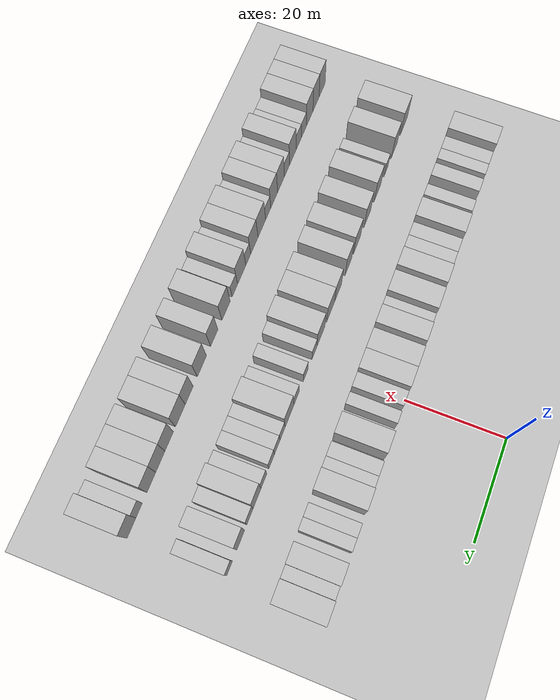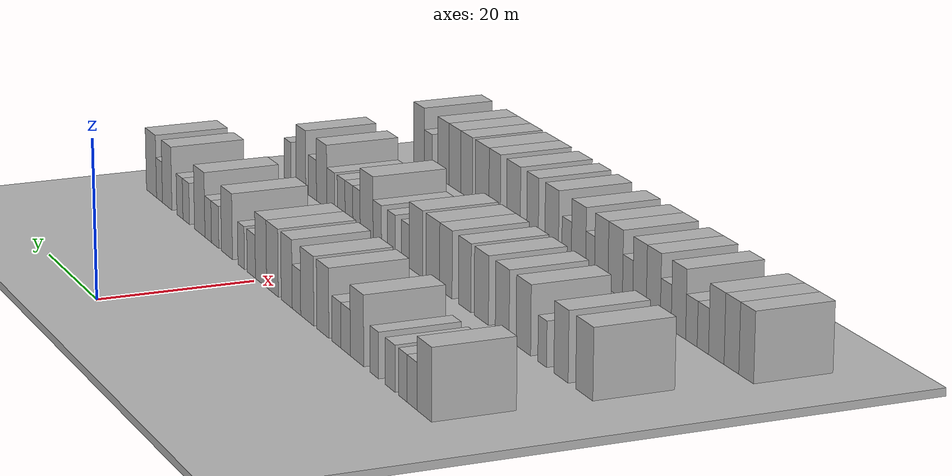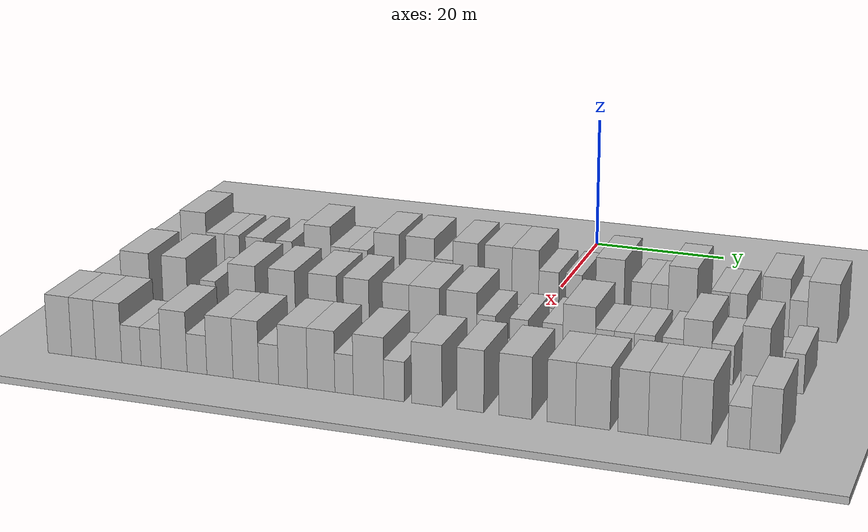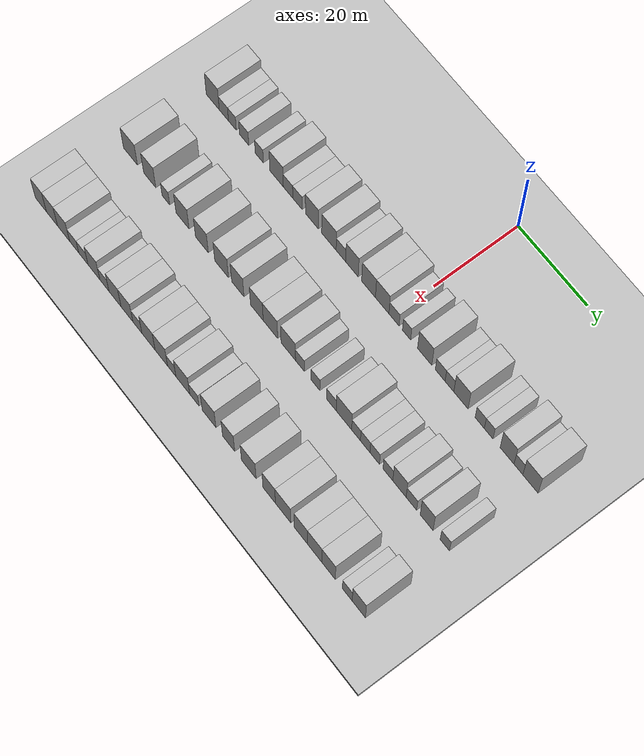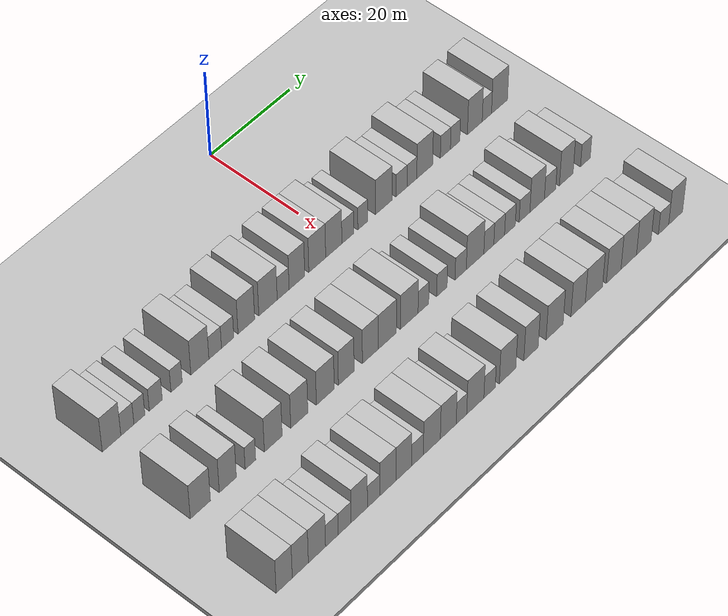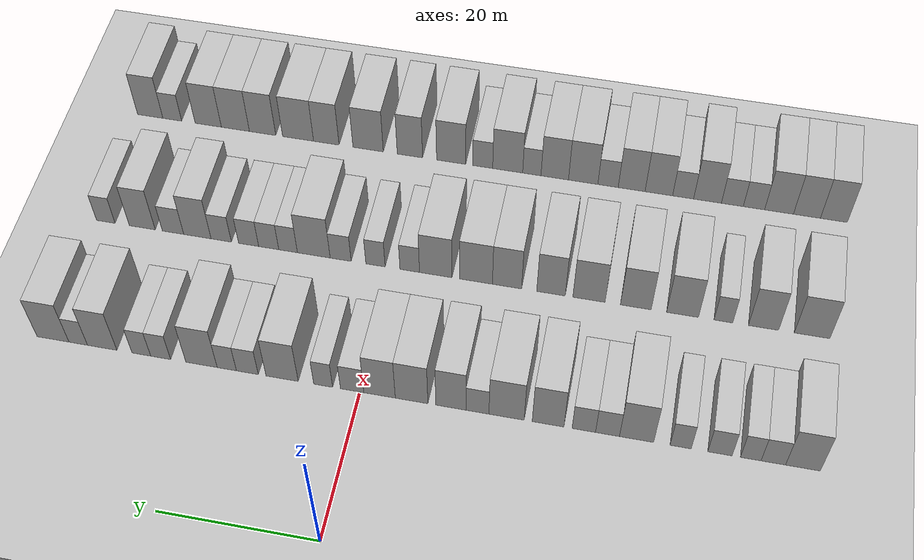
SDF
<sdf version="1.6">
 <world name="default">
  <include><name>ground_plane_1</name><uri>model://HANNAS_ground_plane</uri></include>
  <include>
   <name>ground_plane_2</name>
   <uri>model://HANNAS_ground_plane</uri>
   <pose>100 0 0  0 0 0</pose>
  </include>
  <model name="building_51">
   <static>1</static>
   <pose>25.0000 -54.7039 0 0.000000 0.000000 0.000000</pose>
   <link name="link">
    <pose>0 0 4.50 0 0 0</pose>
    <collision name="collision"><geometry><box><size>10.0000 4.1450 9.0000</size></box></geometry></collision>
    <visual name="visual">
     <cast_shadows>0</cast_shadows>
     <geometry><box><size>10.0000 4.1450 9.0000</size></box></geometry>
     <material>
      <script>
       <uri>model://HANNAS_wall/materials/scripts</uri>
       <uri>model://HANNAS_wall/materials/textures</uri>
       <name>vrc/HANNAS_wall</name>
      </script>
     </material>
    </visual>
   </link>
  </model>
  <model name="building_52">
   <static>1</static>
   <pose>25.0000 -51.1662 0 0.000000 0.000000 0.000000</pose>
   <link name="link">
    <pose>0 0 3.00 0 0 0</pose>
    <collision name="collision"><geometry><box><size>10.0000 2.9303 6.0000</size></box></geometry></collision>
    <visual name="visual">
     <cast_shadows>0</cast_shadows>
     <geometry><box><size>10.0000 2.9303 6.0000</size></box></geometry>
     <material>
      <script>
       <uri>model://HANNAS_wall/materials/scripts</uri>
       <uri>model://HANNAS_wall/materials/textures</uri>
       <name>vrc/HANNAS_wall</name>
      </script>
     </material>
    </visual>
   </link>
  </model>
  <model name="building_53">
   <static>1</static>
   <pose>25.0000 -48.4626 0 0.000000 0.000000 0.000000</pose>
   <link name="link">
    <pose>0 0 3.00 0 0 0</pose>
    <collision name="collision"><geometry><box><size>10.0000 2.4770 6.0000</size></box></geometry></collision>
    <visual name="visual">
     <cast_shadows>0</cast_shadows>
     <geometry><box><size>10.0000 2.4770 6.0000</size></box></geometry>
     <material>
      <script>
       <uri>model://HANNAS_wall/materials/scripts</uri>
       <uri>model://HANNAS_wall/materials/textures</uri>
       <name>vrc/HANNAS_wall</name>
      </script>
     </material>
    </visual>
   </link>
  </model>
  <model name="building_54">
   <static>1</static>
   <pose>25.0000 -44.7541 0 0.000000 0.000000 0.000000</pose>
   <link name="link">
    <pose>0 0 3.00 0 0 0</pose>
    <collision name="collision"><geometry><box><size>10.0000 2.9400 6.0000</size></box></geometry></collision>
    <visual name="visual">
     <cast_shadows>0</cast_shadows>
     <geometry><box><size>10.0000 2.9400 6.0000</size></box></geometry>
     <material>
      <script>
       <uri>model://HANNAS_wall/materials/scripts</uri>
       <uri>model://HANNAS_wall/materials/textures</uri>
       <name>vrc/HANNAS_wall</name>
      </script>
     </material>
    </visual>
   </link>
  </model>
  <model name="building_55">
   <static>1</static>
   <pose>25.0000 -39.9976 0 0.000000 0.000000 0.000000</pose>
   <link name="link">
    <pose>0 0 3.00 0 0 0</pose>
    <collision name="collision"><geometry><box><size>10.0000 2.5729 6.0000</size></box></geometry></collision>
    <visual name="visual">
     <cast_shadows>0</cast_shadows>
     <geometry><box><size>10.0000 2.5729 6.0000</size></box></geometry>
     <material>
      <script>
       <uri>model://HANNAS_wall/materials/scripts</uri>
       <uri>model://HANNAS_wall/materials/textures</uri>
       <name>vrc/HANNAS_wall</name>
      </script>
     </material>
    </visual>
   </link>
  </model>
  <model name="building_56">
   <static>1</static>
   <pose>25.0000 -34.6225 0 0.000000 0.000000 0.000000</pose>
   <link name="link">
    <pose>0 0 4.50 0 0 0</pose>
    <collision name="collision"><geometry><box><size>10.0000 4.1774 9.0000</size></box></geometry></collision>
    <visual name="visual">
     <cast_shadows>0</cast_shadows>
     <geometry><box><size>10.0000 4.1774 9.0000</size></box></geometry>
     <material>
      <script>
       <uri>model://HANNAS_wall/materials/scripts</uri>
       <uri>model://HANNAS_wall/materials/textures</uri>
       <name>vrc/HANNAS_wall</name>
      </script>
     </material>
    </visual>
   </link>
  </model>
  <model name="building_57">
   <static>1</static>
   <pose>25.0000 -31.0649 0 0.000000 0.000000 0.000000</pose>
   <link name="link">
    <pose>0 0 3.00 0 0 0</pose>
    <collision name="collision"><geometry><box><size>10.0000 2.9377 6.0000</size></box></geometry></collision>
    <visual name="visual">
     <cast_shadows>0</cast_shadows>
     <geometry><box><size>10.0000 2.9377 6.0000</size></box></geometry>
     <material>
      <script>
       <uri>model://HANNAS_wall/materials/scripts</uri>
       <uri>model://HANNAS_wall/materials/textures</uri>
       <name>vrc/HANNAS_wall</name>
      </script>
     </material>
    </visual>
   </link>
  </model>
  <model name="building_58">
   <static>1</static>
   <pose>25.0000 -28.1471 0 0.000000 0.000000 0.000000</pose>
   <link name="link">
    <pose>0 0 3.00 0 0 0</pose>
    <collision name="collision"><geometry><box><size>10.0000 2.8979 6.0000</size></box></geometry></collision>
    <visual name="visual">
     <cast_shadows>0</cast_shadows>
     <geometry><box><size>10.0000 2.8979 6.0000</size></box></geometry>
     <material>
      <script>
       <uri>model://HANNAS_wall/materials/scripts</uri>
       <uri>model://HANNAS_wall/materials/textures</uri>
       <name>vrc/HANNAS_wall</name>
      </script>
     </material>
    </visual>
   </link>
  </model>
  <model name="building_59">
   <static>1</static>
   <pose>25.0000 -23.7304 0 0.000000 0.000000 0.000000</pose>
   <link name="link">
    <pose>0 0 4.50 0 0 0</pose>
    <collision name="collision"><geometry><box><size>10.0000 3.9353 9.0000</size></box></geometry></collision>
    <visual name="visual">
     <cast_shadows>0</cast_shadows>
     <geometry><box><size>10.0000 3.9353 9.0000</size></box></geometry>
     <material>
      <script>
       <uri>model://HANNAS_wall/materials/scripts</uri>
       <uri>model://HANNAS_wall/materials/textures</uri>
       <name>vrc/HANNAS_wall</name>
      </script>
     </material>
    </visual>
   </link>
  </model>
  <model name="building_60">
   <static>1</static>
   <pose>25.0000 -18.5632 0 0.000000 0.000000 0.000000</pose>
   <link name="link">
    <pose>0 0 4.50 0 0 0</pose>
    <collision name="collision"><geometry><box><size>10.0000 4.3992 9.0000</size></box></geometry></collision>
    <visual name="visual">
     <cast_shadows>0</cast_shadows>
     <geometry><box><size>10.0000 4.3992 9.0000</size></box></geometry>
     <material>
      <script>
       <uri>model://HANNAS_wall/materials/scripts</uri>
       <uri>model://HANNAS_wall/materials/textures</uri>
       <name>vrc/HANNAS_wall</name>
      </script>
     </material>
    </visual>
   </link>
  </model>
  <model name="building_61">
   <static>1</static>
   <pose>25.0000 -14.9277 0 0.000000 0.000000 0.000000</pose>
   <link name="link">
    <pose>0 0 3.00 0 0 0</pose>
    <collision name="collision"><geometry><box><size>10.0000 2.8717 6.0000</size></box></geometry></collision>
    <visual name="visual">
     <cast_shadows>0</cast_shadows>
     <geometry><box><size>10.0000 2.8717 6.0000</size></box></geometry>
     <material>
      <script>
       <uri>model://HANNAS_wall/materials/scripts</uri>
       <uri>model://HANNAS_wall/materials/textures</uri>
       <name>vrc/HANNAS_wall</name>
      </script>
     </material>
    </visual>
   </link>
  </model>
  <model name="building_62">
   <static>1</static>
   <pose>25.0000 -11.5971 0 0.000000 0.000000 0.000000</pose>
   <link name="link">
    <pose>0 0 4.50 0 0 0</pose>
    <collision name="collision"><geometry><box><size>10.0000 3.7895 9.0000</size></box></geometry></collision>
    <visual name="visual">
     <cast_shadows>0</cast_shadows>
     <geometry><box><size>10.0000 3.7895 9.0000</size></box></geometry>
     <material>
      <script>
       <uri>model://HANNAS_wall/materials/scripts</uri>
       <uri>model://HANNAS_wall/materials/textures</uri>
       <name>vrc/HANNAS_wall</name>
      </script>
     </material>
    </visual>
   </link>
  </model>
  <model name="building_63">
   <static>1</static>
   <pose>25.0000 -6.6392 0 0.000000 0.000000 0.000000</pose>
   <link name="link">
    <pose>0 0 4.50 0 0 0</pose>
    <collision name="collision"><geometry><box><size>10.0000 4.1262 9.0000</size></box></geometry></collision>
    <visual name="visual">
     <cast_shadows>0</cast_shadows>
     <geometry><box><size>10.0000 4.1262 9.0000</size></box></geometry>
     <material>
      <script>
       <uri>model://HANNAS_wall/materials/scripts</uri>
       <uri>model://HANNAS_wall/materials/textures</uri>
       <name>vrc/HANNAS_wall</name>
      </script>
     </material>
    </visual>
   </link>
  </model>
  <model name="building_64">
   <static>1</static>
   <pose>25.0000 -2.5729 0 0.000000 0.000000 0.000000</pose>
   <link name="link">
    <pose>0 0 4.50 0 0 0</pose>
    <collision name="collision"><geometry><box><size>10.0000 4.0065 9.0000</size></box></geometry></collision>
    <visual name="visual">
     <cast_shadows>0</cast_shadows>
     <geometry><box><size>10.0000 4.0065 9.0000</size></box></geometry>
     <material>
      <script>
       <uri>model://HANNAS_wall/materials/scripts</uri>
       <uri>model://HANNAS_wall/materials/textures</uri>
       <name>vrc/HANNAS_wall</name>
      </script>
     </material>
    </visual>
   </link>
  </model>
  <model name="building_65">
   <static>1</static>
   <pose>25.0000 0.9245 0 0.000000 0.000000 0.000000</pose>
   <link name="link">
    <pose>0 0 3.00 0 0 0</pose>
    <collision name="collision"><geometry><box><size>10.0000 2.9884 6.0000</size></box></geometry></collision>
    <visual name="visual">
     <cast_shadows>0</cast_shadows>
     <geometry><box><size>10.0000 2.9884 6.0000</size></box></geometry>
     <material>
      <script>
       <uri>model://HANNAS_wall/materials/scripts</uri>
       <uri>model://HANNAS_wall/materials/textures</uri>
       <name>vrc/HANNAS_wall</name>
      </script>
     </material>
    </visual>
   </link>
  </model>
  <model name="building_66">
   <static>1</static>
   <pose>25.0000 4.6315 0 0.000000 0.000000 0.000000</pose>
   <link name="link">
    <pose>0 0 3.00 0 0 0</pose>
    <collision name="collision"><geometry><box><size>10.0000 2.4256 6.0000</size></box></geometry></collision>
    <visual name="visual">
     <cast_shadows>0</cast_shadows>
     <geometry><box><size>10.0000 2.4256 6.0000</size></box></geometry>
     <material>
      <script>
       <uri>model://HANNAS_wall/materials/scripts</uri>
       <uri>model://HANNAS_wall/materials/textures</uri>
       <name>vrc/HANNAS_wall</name>
      </script>
     </material>
    </visual>
   </link>
  </model>
  <model name="building_67">
   <static>1</static>
   <pose>25.0000 9.9243 0 0.000000 0.000000 0.000000</pose>
   <link name="link">
    <pose>0 0 4.50 0 0 0</pose>
    <collision name="collision"><geometry><box><size>10.0000 4.1599 9.0000</size></box></geometry></collision>
    <visual name="visual">
     <cast_shadows>0</cast_shadows>
     <geometry><box><size>10.0000 4.1599 9.0000</size></box></geometry>
     <material>
      <script>
       <uri>model://HANNAS_wall/materials/scripts</uri>
       <uri>model://HANNAS_wall/materials/textures</uri>
       <name>vrc/HANNAS_wall</name>
      </script>
     </material>
    </visual>
   </link>
  </model>
  <model name="building_68">
   <static>1</static>
   <pose>25.0000 14.4250 0 0.000000 0.000000 0.000000</pose>
   <link name="link">
    <pose>0 0 3.00 0 0 0</pose>
    <collision name="collision"><geometry><box><size>10.0000 2.8414 6.0000</size></box></geometry></collision>
    <visual name="visual">
     <cast_shadows>0</cast_shadows>
     <geometry><box><size>10.0000 2.8414 6.0000</size></box></geometry>
     <material>
      <script>
       <uri>model://HANNAS_wall/materials/scripts</uri>
       <uri>model://HANNAS_wall/materials/textures</uri>
       <name>vrc/HANNAS_wall</name>
      </script>
     </material>
    </visual>
   </link>
  </model>
  <model name="building_69">
   <static>1</static>
   <pose>25.0000 17.1010 0 0.000000 0.000000 0.000000</pose>
   <link name="link">
    <pose>0 0 3.00 0 0 0</pose>
    <collision name="collision"><geometry><box><size>10.0000 2.5105 6.0000</size></box></geometry></collision>
    <visual name="visual">
     <cast_shadows>0</cast_shadows>
     <geometry><box><size>10.0000 2.5105 6.0000</size></box></geometry>
     <material>
      <script>
       <uri>model://HANNAS_wall/materials/scripts</uri>
       <uri>model://HANNAS_wall/materials/textures</uri>
       <name>vrc/HANNAS_wall</name>
      </script>
     </material>
    </visual>
   </link>
  </model>
  <model name="building_70">
   <static>1</static>
   <pose>25.0000 20.4096 0 0.000000 0.000000 0.000000</pose>
   <link name="link">
    <pose>0 0 4.50 0 0 0</pose>
    <collision name="collision"><geometry><box><size>10.0000 4.1067 9.0000</size></box></geometry></collision>
    <visual name="visual">
     <cast_shadows>0</cast_shadows>
     <geometry><box><size>10.0000 4.1067 9.0000</size></box></geometry>
     <material>
      <script>
       <uri>model://HANNAS_wall/materials/scripts</uri>
       <uri>model://HANNAS_wall/materials/textures</uri>
       <name>vrc/HANNAS_wall</name>
      </script>
     </material>
    </visual>
   </link>
  </model>
  <model name="building_71">
   <static>1</static>
   <pose>25.0000 25.7782 0 0.000000 0.000000 0.000000</pose>
   <link name="link">
    <pose>0 0 3.00 0 0 0</pose>
    <collision name="collision"><geometry><box><size>10.0000 2.6306 6.0000</size></box></geometry></collision>
    <visual name="visual">
     <cast_shadows>0</cast_shadows>
     <geometry><box><size>10.0000 2.6306 6.0000</size></box></geometry>
     <material>
      <script>
       <uri>model://HANNAS_wall/materials/scripts</uri>
       <uri>model://HANNAS_wall/materials/textures</uri>
       <name>vrc/HANNAS_wall</name>
      </script>
     </material>
    </visual>
   </link>
  </model>
  <model name="building_72">
   <static>1</static>
   <pose>25.0000 28.3292 0 0.000000 0.000000 0.000000</pose>
   <link name="link">
    <pose>0 0 3.00 0 0 0</pose>
    <collision name="collision"><geometry><box><size>10.0000 2.4713 6.0000</size></box></geometry></collision>
    <visual name="visual">
     <cast_shadows>0</cast_shadows>
     <geometry><box><size>10.0000 2.4713 6.0000</size></box></geometry>
     <material>
      <script>
       <uri>model://HANNAS_wall/materials/scripts</uri>
       <uri>model://HANNAS_wall/materials/textures</uri>
       <name>vrc/HANNAS_wall</name>
      </script>
     </material>
    </visual>
   </link>
  </model>
  <model name="building_73">
   <static>1</static>
   <pose>25.0000 33.5218 0 0.000000 0.000000 0.000000</pose>
   <link name="link">
    <pose>0 0 4.50 0 0 0</pose>
    <collision name="collision"><geometry><box><size>10.0000 3.9139 9.0000</size></box></geometry></collision>
    <visual name="visual">
     <cast_shadows>0</cast_shadows>
     <geometry><box><size>10.0000 3.9139 9.0000</size></box></geometry>
     <material>
      <script>
       <uri>model://HANNAS_wall/materials/scripts</uri>
       <uri>model://HANNAS_wall/materials/textures</uri>
       <name>vrc/HANNAS_wall</name>
      </script>
     </material>
    </visual>
   </link>
  </model>
  <model name="building_74">
   <static>1</static>
   <pose>25.0000 36.7174 0 0.000000 0.000000 0.000000</pose>
   <link name="link">
    <pose>0 0 3.00 0 0 0</pose>
    <collision name="collision"><geometry><box><size>10.0000 2.4773 6.0000</size></box></geometry></collision>
    <visual name="visual">
     <cast_shadows>0</cast_shadows>
     <geometry><box><size>10.0000 2.4773 6.0000</size></box></geometry>
     <material>
      <script>
       <uri>model://HANNAS_wall/materials/scripts</uri>
       <uri>model://HANNAS_wall/materials/textures</uri>
       <name>vrc/HANNAS_wall</name>
      </script>
     </material>
    </visual>
   </link>
  </model>
  <model name="building_75">
   <static>1</static>
   <pose>25.0000 40.0924 0 0.000000 0.000000 0.000000</pose>
   <link name="link">
    <pose>0 0 4.50 0 0 0</pose>
    <collision name="collision"><geometry><box><size>10.0000 4.2727 9.0000</size></box></geometry></collision>
    <visual name="visual">
     <cast_shadows>0</cast_shadows>
     <geometry><box><size>10.0000 4.2727 9.0000</size></box></geometry>
     <material>
      <script>
       <uri>model://HANNAS_wall/materials/scripts</uri>
       <uri>model://HANNAS_wall/materials/textures</uri>
       <name>vrc/HANNAS_wall</name>
      </script>
     </material>
    </visual>
   </link>
  </model>
  <model name="building_168">
   <static>1</static>
   <pose>44.0000 -54.8487 0 0.000000 0.000000 0.000000</pose>
   <link name="link">
    <pose>0 0 4.50 0 0 0</pose>
    <collision name="collision"><geometry><box><size>10.0000 4.4999 9.0000</size></box></geometry></collision>
    <visual name="visual">
     <cast_shadows>0</cast_shadows>
     <geometry><box><size>10.0000 4.4999 9.0000</size></box></geometry>
     <material>
      <script>
       <uri>model://HANNAS_wall/materials/scripts</uri>
       <uri>model://HANNAS_wall/materials/textures</uri>
       <name>vrc/HANNAS_wall</name>
      </script>
     </material>
    </visual>
   </link>
  </model>
  <model name="building_169">
   <static>1</static>
   <pose>44.0000 -48.6720 0 0.000000 0.000000 0.000000</pose>
   <link name="link">
    <pose>0 0 4.50 0 0 0</pose>
    <collision name="collision"><geometry><box><size>10.0000 3.8536 9.0000</size></box></geometry></collision>
    <visual name="visual">
     <cast_shadows>0</cast_shadows>
     <geometry><box><size>10.0000 3.8536 9.0000</size></box></geometry>
     <material>
      <script>
       <uri>model://HANNAS_wall/materials/scripts</uri>
       <uri>model://HANNAS_wall/materials/textures</uri>
       <name>vrc/HANNAS_wall</name>
      </script>
     </material>
    </visual>
   </link>
  </model>
  <model name="building_170">
   <static>1</static>
   <pose>44.0000 -43.5419 0 0.000000 0.000000 0.000000</pose>
   <link name="link">
    <pose>0 0 3.00 0 0 0</pose>
    <collision name="collision"><geometry><box><size>10.0000 2.4065 6.0000</size></box></geometry></collision>
    <visual name="visual">
     <cast_shadows>0</cast_shadows>
     <geometry><box><size>10.0000 2.4065 6.0000</size></box></geometry>
     <material>
      <script>
       <uri>model://HANNAS_wall/materials/scripts</uri>
       <uri>model://HANNAS_wall/materials/textures</uri>
       <name>vrc/HANNAS_wall</name>
      </script>
     </material>
    </visual>
   </link>
  </model>
  <model name="building_171">
   <static>1</static>
   <pose>44.0000 -38.2819 0 0.000000 0.000000 0.000000</pose>
   <link name="link">
    <pose>0 0 4.50 0 0 0</pose>
    <collision name="collision"><geometry><box><size>10.0000 4.1137 9.0000</size></box></geometry></collision>
    <visual name="visual">
     <cast_shadows>0</cast_shadows>
     <geometry><box><size>10.0000 4.1137 9.0000</size></box></geometry>
     <material>
      <script>
       <uri>model://HANNAS_wall/materials/scripts</uri>
       <uri>model://HANNAS_wall/materials/textures</uri>
       <name>vrc/HANNAS_wall</name>
      </script>
     </material>
    </visual>
   </link>
  </model>
  <model name="building_172">
   <static>1</static>
   <pose>44.0000 -32.2235 0 0.000000 0.000000 0.000000</pose>
   <link name="link">
    <pose>0 0 4.50 0 0 0</pose>
    <collision name="collision"><geometry><box><size>10.0000 4.0030 9.0000</size></box></geometry></collision>
    <visual name="visual">
     <cast_shadows>0</cast_shadows>
     <geometry><box><size>10.0000 4.0030 9.0000</size></box></geometry>
     <material>
      <script>
       <uri>model://HANNAS_wall/materials/scripts</uri>
       <uri>model://HANNAS_wall/materials/textures</uri>
       <name>vrc/HANNAS_wall</name>
      </script>
     </material>
    </visual>
   </link>
  </model>
  <model name="building_173">
   <static>1</static>
   <pose>44.0000 -26.1094 0 0.000000 0.000000 0.000000</pose>
   <link name="link">
    <pose>0 0 4.50 0 0 0</pose>
    <collision name="collision"><geometry><box><size>10.0000 4.2254 9.0000</size></box></geometry></collision>
    <visual name="visual">
     <cast_shadows>0</cast_shadows>
     <geometry><box><size>10.0000 4.2254 9.0000</size></box></geometry>
     <material>
      <script>
       <uri>model://HANNAS_wall/materials/scripts</uri>
       <uri>model://HANNAS_wall/materials/textures</uri>
       <name>vrc/HANNAS_wall</name>
      </script>
     </material>
    </visual>
   </link>
  </model>
  <model name="building_174">
   <static>1</static>
   <pose>44.0000 -21.1174 0 0.000000 0.000000 0.000000</pose>
   <link name="link">
    <pose>0 0 4.50 0 0 0</pose>
    <collision name="collision"><geometry><box><size>10.0000 3.7585 9.0000</size></box></geometry></collision>
    <visual name="visual">
     <cast_shadows>0</cast_shadows>
     <geometry><box><size>10.0000 3.7585 9.0000</size></box></geometry>
     <material>
      <script>
       <uri>model://HANNAS_wall/materials/scripts</uri>
       <uri>model://HANNAS_wall/materials/textures</uri>
       <name>vrc/HANNAS_wall</name>
      </script>
     </material>
    </visual>
   </link>
  </model>
  <model name="building_175">
   <static>1</static>
   <pose>44.0000 -15.3020 0 0.000000 0.000000 0.000000</pose>
   <link name="link">
    <pose>0 0 4.50 0 0 0</pose>
    <collision name="collision"><geometry><box><size>10.0000 3.8724 9.0000</size></box></geometry></collision>
    <visual name="visual">
     <cast_shadows>0</cast_shadows>
     <geometry><box><size>10.0000 3.8724 9.0000</size></box></geometry>
     <material>
      <script>
       <uri>model://HANNAS_wall/materials/scripts</uri>
       <uri>model://HANNAS_wall/materials/textures</uri>
       <name>vrc/HANNAS_wall</name>
      </script>
     </material>
    </visual>
   </link>
  </model>
  <model name="building_176">
   <static>1</static>
   <pose>44.0000 -11.1709 0 0.000000 0.000000 0.000000</pose>
   <link name="link">
    <pose>0 0 4.50 0 0 0</pose>
    <collision name="collision"><geometry><box><size>10.0000 4.3899 9.0000</size></box></geometry></collision>
    <visual name="visual">
     <cast_shadows>0</cast_shadows>
     <geometry><box><size>10.0000 4.3899 9.0000</size></box></geometry>
     <material>
      <script>
       <uri>model://HANNAS_wall/materials/scripts</uri>
       <uri>model://HANNAS_wall/materials/textures</uri>
       <name>vrc/HANNAS_wall</name>
      </script>
     </material>
    </visual>
   </link>
  </model>
  <model name="building_177">
   <static>1</static>
   <pose>44.0000 -5.7968 0 0.000000 0.000000 0.000000</pose>
   <link name="link">
    <pose>0 0 4.50 0 0 0</pose>
    <collision name="collision"><geometry><box><size>10.0000 4.3583 9.0000</size></box></geometry></collision>
    <visual name="visual">
     <cast_shadows>0</cast_shadows>
     <geometry><box><size>10.0000 4.3583 9.0000</size></box></geometry>
     <material>
      <script>
       <uri>model://HANNAS_wall/materials/scripts</uri>
       <uri>model://HANNAS_wall/materials/textures</uri>
       <name>vrc/HANNAS_wall</name>
      </script>
     </material>
    </visual>
   </link>
  </model>
  <model name="building_178">
   <static>1</static>
   <pose>44.0000 -2.2980 0 0.000000 0.000000 0.000000</pose>
   <link name="link">
    <pose>0 0 3.00 0 0 0</pose>
    <collision name="collision"><geometry><box><size>10.0000 2.6393 6.0000</size></box></geometry></collision>
    <visual name="visual">
     <cast_shadows>0</cast_shadows>
     <geometry><box><size>10.0000 2.6393 6.0000</size></box></geometry>
     <material>
      <script>
       <uri>model://HANNAS_wall/materials/scripts</uri>
       <uri>model://HANNAS_wall/materials/textures</uri>
       <name>vrc/HANNAS_wall</name>
      </script>
     </material>
    </visual>
   </link>
  </model>
  <model name="building_179">
   <static>1</static>
   <pose>44.0000 2.3263 0 0.000000 0.000000 0.000000</pose>
   <link name="link">
    <pose>0 0 3.00 0 0 0</pose>
    <collision name="collision"><geometry><box><size>10.0000 2.6094 6.0000</size></box></geometry></collision>
    <visual name="visual">
     <cast_shadows>0</cast_shadows>
     <geometry><box><size>10.0000 2.6094 6.0000</size></box></geometry>
     <material>
      <script>
       <uri>model://HANNAS_wall/materials/scripts</uri>
       <uri>model://HANNAS_wall/materials/textures</uri>
       <name>vrc/HANNAS_wall</name>
      </script>
     </material>
    </visual>
   </link>
  </model>
  <model name="building_180">
   <static>1</static>
   <pose>44.0000 7.0620 0 0.000000 0.000000 0.000000</pose>
   <link name="link">
    <pose>0 0 3.00 0 0 0</pose>
    <collision name="collision"><geometry><box><size>10.0000 2.8620 6.0000</size></box></geometry></collision>
    <visual name="visual">
     <cast_shadows>0</cast_shadows>
     <geometry><box><size>10.0000 2.8620 6.0000</size></box></geometry>
     <material>
      <script>
       <uri>model://HANNAS_wall/materials/scripts</uri>
       <uri>model://HANNAS_wall/materials/textures</uri>
       <name>vrc/HANNAS_wall</name>
      </script>
     </material>
    </visual>
   </link>
  </model>
  <model name="building_181">
   <static>1</static>
   <pose>44.0000 10.7300 0 0.000000 0.000000 0.000000</pose>
   <link name="link">
    <pose>0 0 4.50 0 0 0</pose>
    <collision name="collision"><geometry><box><size>10.0000 4.4740 9.0000</size></box></geometry></collision>
    <visual name="visual">
     <cast_shadows>0</cast_shadows>
     <geometry><box><size>10.0000 4.4740 9.0000</size></box></geometry>
     <material>
      <script>
       <uri>model://HANNAS_wall/materials/scripts</uri>
       <uri>model://HANNAS_wall/materials/textures</uri>
       <name>vrc/HANNAS_wall</name>
      </script>
     </material>
    </visual>
   </link>
  </model>
  <model name="building_182">
   <static>1</static>
   <pose>44.0000 14.2489 0 0.000000 0.000000 0.000000</pose>
   <link name="link">
    <pose>0 0 3.00 0 0 0</pose>
    <collision name="collision"><geometry><box><size>10.0000 2.5638 6.0000</size></box></geometry></collision>
    <visual name="visual">
     <cast_shadows>0</cast_shadows>
     <geometry><box><size>10.0000 2.5638 6.0000</size></box></geometry>
     <material>
      <script>
       <uri>model://HANNAS_wall/materials/scripts</uri>
       <uri>model://HANNAS_wall/materials/textures</uri>
       <name>vrc/HANNAS_wall</name>
      </script>
     </material>
    </visual>
   </link>
  </model>
  <model name="building_183">
   <static>1</static>
   <pose>44.0000 16.9144 0 0.000000 0.000000 0.000000</pose>
   <link name="link">
    <pose>0 0 3.00 0 0 0</pose>
    <collision name="collision"><geometry><box><size>10.0000 2.7672 6.0000</size></box></geometry></collision>
    <visual name="visual">
     <cast_shadows>0</cast_shadows>
     <geometry><box><size>10.0000 2.7672 6.0000</size></box></geometry>
     <material>
      <script>
       <uri>model://HANNAS_wall/materials/scripts</uri>
       <uri>model://HANNAS_wall/materials/textures</uri>
       <name>vrc/HANNAS_wall</name>
      </script>
     </material>
    </visual>
   </link>
  </model>
  <model name="building_184">
   <static>1</static>
   <pose>44.0000 19.6864 0 0.000000 0.000000 0.000000</pose>
   <link name="link">
    <pose>0 0 3.00 0 0 0</pose>
    <collision name="collision"><geometry><box><size>10.0000 2.7769 6.0000</size></box></geometry></collision>
    <visual name="visual">
     <cast_shadows>0</cast_shadows>
     <geometry><box><size>10.0000 2.7769 6.0000</size></box></geometry>
     <material>
      <script>
       <uri>model://HANNAS_wall/materials/scripts</uri>
       <uri>model://HANNAS_wall/materials/textures</uri>
       <name>vrc/HANNAS_wall</name>
      </script>
     </material>
    </visual>
   </link>
  </model>
  <model name="building_185">
   <static>1</static>
   <pose>44.0000 23.4827 0 0.000000 0.000000 0.000000</pose>
   <link name="link">
    <pose>0 0 3.00 0 0 0</pose>
    <collision name="collision"><geometry><box><size>10.0000 2.8156 6.0000</size></box></geometry></collision>
    <visual name="visual">
     <cast_shadows>0</cast_shadows>
     <geometry><box><size>10.0000 2.8156 6.0000</size></box></geometry>
     <material>
      <script>
       <uri>model://HANNAS_wall/materials/scripts</uri>
       <uri>model://HANNAS_wall/materials/textures</uri>
       <name>vrc/HANNAS_wall</name>
      </script>
     </material>
    </visual>
   </link>
  </model>
  <model name="building_186">
   <static>1</static>
   <pose>44.0000 26.7997 0 0.000000 0.000000 0.000000</pose>
   <link name="link">
    <pose>0 0 4.50 0 0 0</pose>
    <collision name="collision"><geometry><box><size>10.0000 3.8185 9.0000</size></box></geometry></collision>
    <visual name="visual">
     <cast_shadows>0</cast_shadows>
     <geometry><box><size>10.0000 3.8185 9.0000</size></box></geometry>
     <material>
      <script>
       <uri>model://HANNAS_wall/materials/scripts</uri>
       <uri>model://HANNAS_wall/materials/textures</uri>
       <name>vrc/HANNAS_wall</name>
      </script>
     </material>
    </visual>
   </link>
  </model>
  <model name="building_187">
   <static>1</static>
   <pose>44.0000 30.2068 0 0.000000 0.000000 0.000000</pose>
   <link name="link">
    <pose>0 0 3.00 0 0 0</pose>
    <collision name="collision"><geometry><box><size>10.0000 2.9957 6.0000</size></box></geometry></collision>
    <visual name="visual">
     <cast_shadows>0</cast_shadows>
     <geometry><box><size>10.0000 2.9957 6.0000</size></box></geometry>
     <material>
      <script>
       <uri>model://HANNAS_wall/materials/scripts</uri>
       <uri>model://HANNAS_wall/materials/textures</uri>
       <name>vrc/HANNAS_wall</name>
      </script>
     </material>
    </visual>
   </link>
  </model>
  <model name="building_188">
   <static>1</static>
   <pose>44.0000 34.5293 0 0.000000 0.000000 0.000000</pose>
   <link name="link">
    <pose>0 0 4.50 0 0 0</pose>
    <collision name="collision"><geometry><box><size>10.0000 3.6493 9.0000</size></box></geometry></collision>
    <visual name="visual">
     <cast_shadows>0</cast_shadows>
     <geometry><box><size>10.0000 3.6493 9.0000</size></box></geometry>
     <material>
      <script>
       <uri>model://HANNAS_wall/materials/scripts</uri>
       <uri>model://HANNAS_wall/materials/textures</uri>
       <name>vrc/HANNAS_wall</name>
      </script>
     </material>
    </visual>
   </link>
  </model>
  <model name="building_189">
   <static>1</static>
   <pose>44.0000 39.6642 0 0.000000 0.000000 0.000000</pose>
   <link name="link">
    <pose>0 0 3.00 0 0 0</pose>
    <collision name="collision"><geometry><box><size>10.0000 2.6206 6.0000</size></box></geometry></collision>
    <visual name="visual">
     <cast_shadows>0</cast_shadows>
     <geometry><box><size>10.0000 2.6206 6.0000</size></box></geometry>
     <material>
      <script>
       <uri>model://HANNAS_wall/materials/scripts</uri>
       <uri>model://HANNAS_wall/materials/textures</uri>
       <name>vrc/HANNAS_wall</name>
      </script>
     </material>
    </visual>
   </link>
  </model>
  <model name="building_291">
   <static>1</static>
   <pose>63.0000 -56.8185 0 0.000000 0.000000 0.000000</pose>
   <link name="link">
    <pose>0 0 4.50 0 0 0</pose>
    <collision name="collision"><geometry><box><size>10.0000 3.6053 9.0000</size></box></geometry></collision>
    <visual name="visual">
     <cast_shadows>0</cast_shadows>
     <geometry><box><size>10.0000 3.6053 9.0000</size></box></geometry>
     <material>
      <script>
       <uri>model://HANNAS_wall/materials/scripts</uri>
       <uri>model://HANNAS_wall/materials/textures</uri>
       <name>vrc/HANNAS_wall</name>
      </script>
     </material>
    </visual>
   </link>
  </model>
  <model name="building_292">
   <static>1</static>
   <pose>63.0000 -53.2060 0 0.000000 0.000000 0.000000</pose>
   <link name="link">
    <pose>0 0 4.50 0 0 0</pose>
    <collision name="collision"><geometry><box><size>10.0000 3.6197 9.0000</size></box></geometry></collision>
    <visual name="visual">
     <cast_shadows>0</cast_shadows>
     <geometry><box><size>10.0000 3.6197 9.0000</size></box></geometry>
     <material>
      <script>
       <uri>model://HANNAS_wall/materials/scripts</uri>
       <uri>model://HANNAS_wall/materials/textures</uri>
       <name>vrc/HANNAS_wall</name>
      </script>
     </material>
    </visual>
   </link>
  </model>
  <model name="building_293">
   <static>1</static>
   <pose>63.0000 -49.4503 0 0.000000 0.000000 0.000000</pose>
   <link name="link">
    <pose>0 0 4.50 0 0 0</pose>
    <collision name="collision"><geometry><box><size>10.0000 3.8917 9.0000</size></box></geometry></collision>
    <visual name="visual">
     <cast_shadows>0</cast_shadows>
     <geometry><box><size>10.0000 3.8917 9.0000</size></box></geometry>
     <material>
      <script>
       <uri>model://HANNAS_wall/materials/scripts</uri>
       <uri>model://HANNAS_wall/materials/textures</uri>
       <name>vrc/HANNAS_wall</name>
      </script>
     </material>
    </visual>
   </link>
  </model>
  <model name="building_294">
   <static>1</static>
   <pose>63.0000 -46.0616 0 0.000000 0.000000 0.000000</pose>
   <link name="link">
    <pose>0 0 3.00 0 0 0</pose>
    <collision name="collision"><geometry><box><size>10.0000 2.8856 6.0000</size></box></geometry></collision>
    <visual name="visual">
     <cast_shadows>0</cast_shadows>
     <geometry><box><size>10.0000 2.8856 6.0000</size></box></geometry>
     <material>
      <script>
       <uri>model://HANNAS_wall/materials/scripts</uri>
       <uri>model://HANNAS_wall/materials/textures</uri>
       <name>vrc/HANNAS_wall</name>
      </script>
     </material>
    </visual>
   </link>
  </model>
  <model name="building_295">
   <static>1</static>
   <pose>63.0000 -43.1310 0 0.000000 0.000000 0.000000</pose>
   <link name="link">
    <pose>0 0 3.00 0 0 0</pose>
    <collision name="collision"><geometry><box><size>10.0000 2.9756 6.0000</size></box></geometry></collision>
    <visual name="visual">
     <cast_shadows>0</cast_shadows>
     <geometry><box><size>10.0000 2.9756 6.0000</size></box></geometry>
     <material>
      <script>
       <uri>model://HANNAS_wall/materials/scripts</uri>
       <uri>model://HANNAS_wall/materials/textures</uri>
       <name>vrc/HANNAS_wall</name>
      </script>
     </material>
    </visual>
   </link>
  </model>
  <model name="building_296">
   <static>1</static>
   <pose>63.0000 -39.7483 0 0.000000 0.000000 0.000000</pose>
   <link name="link">
    <pose>0 0 4.50 0 0 0</pose>
    <collision name="collision"><geometry><box><size>10.0000 3.7897 9.0000</size></box></geometry></collision>
    <visual name="visual">
     <cast_shadows>0</cast_shadows>
     <geometry><box><size>10.0000 3.7897 9.0000</size></box></geometry>
     <material>
      <script>
       <uri>model://HANNAS_wall/materials/scripts</uri>
       <uri>model://HANNAS_wall/materials/textures</uri>
       <name>vrc/HANNAS_wall</name>
      </script>
     </material>
    </visual>
   </link>
  </model>
  <model name="building_297">
   <static>1</static>
   <pose>63.0000 -36.4173 0 0.000000 0.000000 0.000000</pose>
   <link name="link">
    <pose>0 0 3.00 0 0 0</pose>
    <collision name="collision"><geometry><box><size>10.0000 2.8723 6.0000</size></box></geometry></collision>
    <visual name="visual">
     <cast_shadows>0</cast_shadows>
     <geometry><box><size>10.0000 2.8723 6.0000</size></box></geometry>
     <material>
      <script>
       <uri>model://HANNAS_wall/materials/scripts</uri>
       <uri>model://HANNAS_wall/materials/textures</uri>
       <name>vrc/HANNAS_wall</name>
      </script>
     </material>
    </visual>
   </link>
  </model>
  <model name="building_298">
   <static>1</static>
   <pose>63.0000 -33.0860 0 0.000000 0.000000 0.000000</pose>
   <link name="link">
    <pose>0 0 4.50 0 0 0</pose>
    <collision name="collision"><geometry><box><size>10.0000 3.7903 9.0000</size></box></geometry></collision>
    <visual name="visual">
     <cast_shadows>0</cast_shadows>
     <geometry><box><size>10.0000 3.7903 9.0000</size></box></geometry>
     <material>
      <script>
       <uri>model://HANNAS_wall/materials/scripts</uri>
       <uri>model://HANNAS_wall/materials/textures</uri>
       <name>vrc/HANNAS_wall</name>
      </script>
     </material>
    </visual>
   </link>
  </model>
  <model name="building_299">
   <static>1</static>
   <pose>63.0000 -29.3379 0 0.000000 0.000000 0.000000</pose>
   <link name="link">
    <pose>0 0 4.50 0 0 0</pose>
    <collision name="collision"><geometry><box><size>10.0000 3.7058 9.0000</size></box></geometry></collision>
    <visual name="visual">
     <cast_shadows>0</cast_shadows>
     <geometry><box><size>10.0000 3.7058 9.0000</size></box></geometry>
     <material>
      <script>
       <uri>model://HANNAS_wall/materials/scripts</uri>
       <uri>model://HANNAS_wall/materials/textures</uri>
       <name>vrc/HANNAS_wall</name>
      </script>
     </material>
    </visual>
   </link>
  </model>
  <model name="building_300">
   <static>1</static>
   <pose>63.0000 -26.0770 0 0.000000 0.000000 0.000000</pose>
   <link name="link">
    <pose>0 0 3.00 0 0 0</pose>
    <collision name="collision"><geometry><box><size>10.0000 2.8160 6.0000</size></box></geometry></collision>
    <visual name="visual">
     <cast_shadows>0</cast_shadows>
     <geometry><box><size>10.0000 2.8160 6.0000</size></box></geometry>
     <material>
      <script>
       <uri>model://HANNAS_wall/materials/scripts</uri>
       <uri>model://HANNAS_wall/materials/textures</uri>
       <name>vrc/HANNAS_wall</name>
      </script>
     </material>
    </visual>
   </link>
  </model>
  <model name="building_301">
   <static>1</static>
   <pose>63.0000 -22.6278 0 0.000000 0.000000 0.000000</pose>
   <link name="link">
    <pose>0 0 4.50 0 0 0</pose>
    <collision name="collision"><geometry><box><size>10.0000 4.0823 9.0000</size></box></geometry></collision>
    <visual name="visual">
     <cast_shadows>0</cast_shadows>
     <geometry><box><size>10.0000 4.0823 9.0000</size></box></geometry>
     <material>
      <script>
       <uri>model://HANNAS_wall/materials/scripts</uri>
       <uri>model://HANNAS_wall/materials/textures</uri>
       <name>vrc/HANNAS_wall</name>
      </script>
     </material>
    </visual>
   </link>
  </model>
  <model name="building_302">
   <static>1</static>
   <pose>63.0000 -18.6668 0 0.000000 0.000000 0.000000</pose>
   <link name="link">
    <pose>0 0 4.50 0 0 0</pose>
    <collision name="collision"><geometry><box><size>10.0000 3.8397 9.0000</size></box></geometry></collision>
    <visual name="visual">
     <cast_shadows>0</cast_shadows>
     <geometry><box><size>10.0000 3.8397 9.0000</size></box></geometry>
     <material>
      <script>
       <uri>model://HANNAS_wall/materials/scripts</uri>
       <uri>model://HANNAS_wall/materials/textures</uri>
       <name>vrc/HANNAS_wall</name>
      </script>
     </material>
    </visual>
   </link>
  </model>
  <model name="building_303">
   <static>1</static>
   <pose>63.0000 -15.4652 0 0.000000 0.000000 0.000000</pose>
   <link name="link">
    <pose>0 0 3.00 0 0 0</pose>
    <collision name="collision"><geometry><box><size>10.0000 2.5637 6.0000</size></box></geometry></collision>
    <visual name="visual">
     <cast_shadows>0</cast_shadows>
     <geometry><box><size>10.0000 2.5637 6.0000</size></box></geometry>
     <material>
      <script>
       <uri>model://HANNAS_wall/materials/scripts</uri>
       <uri>model://HANNAS_wall/materials/textures</uri>
       <name>vrc/HANNAS_wall</name>
      </script>
     </material>
    </visual>
   </link>
  </model>
  <model name="building_304">
   <static>1</static>
   <pose>63.0000 -12.0735 0 0.000000 0.000000 0.000000</pose>
   <link name="link">
    <pose>0 0 4.50 0 0 0</pose>
    <collision name="collision"><geometry><box><size>10.0000 4.2197 9.0000</size></box></geometry></collision>
    <visual name="visual">
     <cast_shadows>0</cast_shadows>
     <geometry><box><size>10.0000 4.2197 9.0000</size></box></geometry>
     <material>
      <script>
       <uri>model://HANNAS_wall/materials/scripts</uri>
       <uri>model://HANNAS_wall/materials/textures</uri>
       <name>vrc/HANNAS_wall</name>
      </script>
     </material>
    </visual>
   </link>
  </model>
  <model name="building_305">
   <static>1</static>
   <pose>63.0000 -8.5590 0 0.000000 0.000000 0.000000</pose>
   <link name="link">
    <pose>0 0 3.00 0 0 0</pose>
    <collision name="collision"><geometry><box><size>10.0000 2.8092 6.0000</size></box></geometry></collision>
    <visual name="visual">
     <cast_shadows>0</cast_shadows>
     <geometry><box><size>10.0000 2.8092 6.0000</size></box></geometry>
     <material>
      <script>
       <uri>model://HANNAS_wall/materials/scripts</uri>
       <uri>model://HANNAS_wall/materials/textures</uri>
       <name>vrc/HANNAS_wall</name>
      </script>
     </material>
    </visual>
   </link>
  </model>
  <model name="building_306">
   <static>1</static>
   <pose>63.0000 -4.0918 0 0.000000 0.000000 0.000000</pose>
   <link name="link">
    <pose>0 0 4.50 0 0 0</pose>
    <collision name="collision"><geometry><box><size>10.0000 4.1251 9.0000</size></box></geometry></collision>
    <visual name="visual">
     <cast_shadows>0</cast_shadows>
     <geometry><box><size>10.0000 4.1251 9.0000</size></box></geometry>
     <material>
      <script>
       <uri>model://HANNAS_wall/materials/scripts</uri>
       <uri>model://HANNAS_wall/materials/textures</uri>
       <name>vrc/HANNAS_wall</name>
      </script>
     </material>
    </visual>
   </link>
  </model>
  <model name="building_307">
   <static>1</static>
   <pose>63.0000 1.7796 0 0.000000 0.000000 0.000000</pose>
   <link name="link">
    <pose>0 0 4.50 0 0 0</pose>
    <collision name="collision"><geometry><box><size>10.0000 3.6176 9.0000</size></box></geometry></collision>
    <visual name="visual">
     <cast_shadows>0</cast_shadows>
     <geometry><box><size>10.0000 3.6176 9.0000</size></box></geometry>
     <material>
      <script>
       <uri>model://HANNAS_wall/materials/scripts</uri>
       <uri>model://HANNAS_wall/materials/textures</uri>
       <name>vrc/HANNAS_wall</name>
      </script>
     </material>
    </visual>
   </link>
  </model>
  <model name="building_308">
   <static>1</static>
   <pose>63.0000 7.7706 0 0.000000 0.000000 0.000000</pose>
   <link name="link">
    <pose>0 0 4.50 0 0 0</pose>
    <collision name="collision"><geometry><box><size>10.0000 4.3644 9.0000</size></box></geometry></collision>
    <visual name="visual">
     <cast_shadows>0</cast_shadows>
     <geometry><box><size>10.0000 4.3644 9.0000</size></box></geometry>
     <material>
      <script>
       <uri>model://HANNAS_wall/materials/scripts</uri>
       <uri>model://HANNAS_wall/materials/textures</uri>
       <name>vrc/HANNAS_wall</name>
      </script>
     </material>
    </visual>
   </link>
  </model>
  <model name="building_309">
   <static>1</static>
   <pose>63.0000 13.8017 0 0.000000 0.000000 0.000000</pose>
   <link name="link">
    <pose>0 0 4.50 0 0 0</pose>
    <collision name="collision"><geometry><box><size>10.0000 3.6976 9.0000</size></box></geometry></collision>
    <visual name="visual">
     <cast_shadows>0</cast_shadows>
     <geometry><box><size>10.0000 3.6976 9.0000</size></box></geometry>
     <material>
      <script>
       <uri>model://HANNAS_wall/materials/scripts</uri>
       <uri>model://HANNAS_wall/materials/textures</uri>
       <name>vrc/HANNAS_wall</name>
      </script>
     </material>
    </visual>
   </link>
  </model>
  <model name="building_310">
   <static>1</static>
   <pose>63.0000 17.8987 0 0.000000 0.000000 0.000000</pose>
   <link name="link">
    <pose>0 0 4.50 0 0 0</pose>
    <collision name="collision"><geometry><box><size>10.0000 4.4965 9.0000</size></box></geometry></collision>
    <visual name="visual">
     <cast_shadows>0</cast_shadows>
     <geometry><box><size>10.0000 4.4965 9.0000</size></box></geometry>
     <material>
      <script>
       <uri>model://HANNAS_wall/materials/scripts</uri>
       <uri>model://HANNAS_wall/materials/textures</uri>
       <name>vrc/HANNAS_wall</name>
      </script>
     </material>
    </visual>
   </link>
  </model>
  <model name="building_311">
   <static>1</static>
   <pose>63.0000 23.0740 0 0.000000 0.000000 0.000000</pose>
   <link name="link">
    <pose>0 0 4.50 0 0 0</pose>
    <collision name="collision"><geometry><box><size>10.0000 3.8541 9.0000</size></box></geometry></collision>
    <visual name="visual">
     <cast_shadows>0</cast_shadows>
     <geometry><box><size>10.0000 3.8541 9.0000</size></box></geometry>
     <material>
      <script>
       <uri>model://HANNAS_wall/materials/scripts</uri>
       <uri>model://HANNAS_wall/materials/textures</uri>
       <name>vrc/HANNAS_wall</name>
      </script>
     </material>
    </visual>
   </link>
  </model>
  <model name="building_312">
   <static>1</static>
   <pose>63.0000 27.0616 0 0.000000 0.000000 0.000000</pose>
   <link name="link">
    <pose>0 0 4.50 0 0 0</pose>
    <collision name="collision"><geometry><box><size>10.0000 4.1210 9.0000</size></box></geometry></collision>
    <visual name="visual">
     <cast_shadows>0</cast_shadows>
     <geometry><box><size>10.0000 4.1210 9.0000</size></box></geometry>
     <material>
      <script>
       <uri>model://HANNAS_wall/materials/scripts</uri>
       <uri>model://HANNAS_wall/materials/textures</uri>
       <name>vrc/HANNAS_wall</name>
      </script>
     </material>
    </visual>
   </link>
  </model>
  <model name="building_313">
   <static>1</static>
   <pose>63.0000 31.0565 0 0.000000 0.000000 0.000000</pose>
   <link name="link">
    <pose>0 0 4.50 0 0 0</pose>
    <collision name="collision"><geometry><box><size>10.0000 3.8688 9.0000</size></box></geometry></collision>
    <visual name="visual">
     <cast_shadows>0</cast_shadows>
     <geometry><box><size>10.0000 3.8688 9.0000</size></box></geometry>
     <material>
      <script>
       <uri>model://HANNAS_wall/materials/scripts</uri>
       <uri>model://HANNAS_wall/materials/textures</uri>
       <name>vrc/HANNAS_wall</name>
      </script>
     </material>
    </visual>
   </link>
  </model>
  <model name="building_314">
   <static>1</static>
   <pose>63.0000 36.3816 0 0.000000 0.000000 0.000000</pose>
   <link name="link">
    <pose>0 0 3.00 0 0 0</pose>
    <collision name="collision"><geometry><box><size>10.0000 2.7813 6.0000</size></box></geometry></collision>
    <visual name="visual">
     <cast_shadows>0</cast_shadows>
     <geometry><box><size>10.0000 2.7813 6.0000</size></box></geometry>
     <material>
      <script>
       <uri>model://HANNAS_wall/materials/scripts</uri>
       <uri>model://HANNAS_wall/materials/textures</uri>
       <name>vrc/HANNAS_wall</name>
      </script>
     </material>
    </visual>
   </link>
  </model>
  <model name="building_315">
   <static>1</static>
   <pose>63.0000 39.6544 0 0.000000 0.000000 0.000000</pose>
   <link name="link">
    <pose>0 0 4.50 0 0 0</pose>
    <collision name="collision"><geometry><box><size>10.0000 3.7644 9.0000</size></box></geometry></collision>
    <visual name="visual">
     <cast_shadows>0</cast_shadows>
     <geometry><box><size>10.0000 3.7644 9.0000</size></box></geometry>
     <material>
      <script>
       <uri>model://HANNAS_wall/materials/scripts</uri>
       <uri>model://HANNAS_wall/materials/textures</uri>
       <name>vrc/HANNAS_wall</name>
      </script>
     </material>
    </visual>
   </link>
  </model>
 </world>
</sdf>
